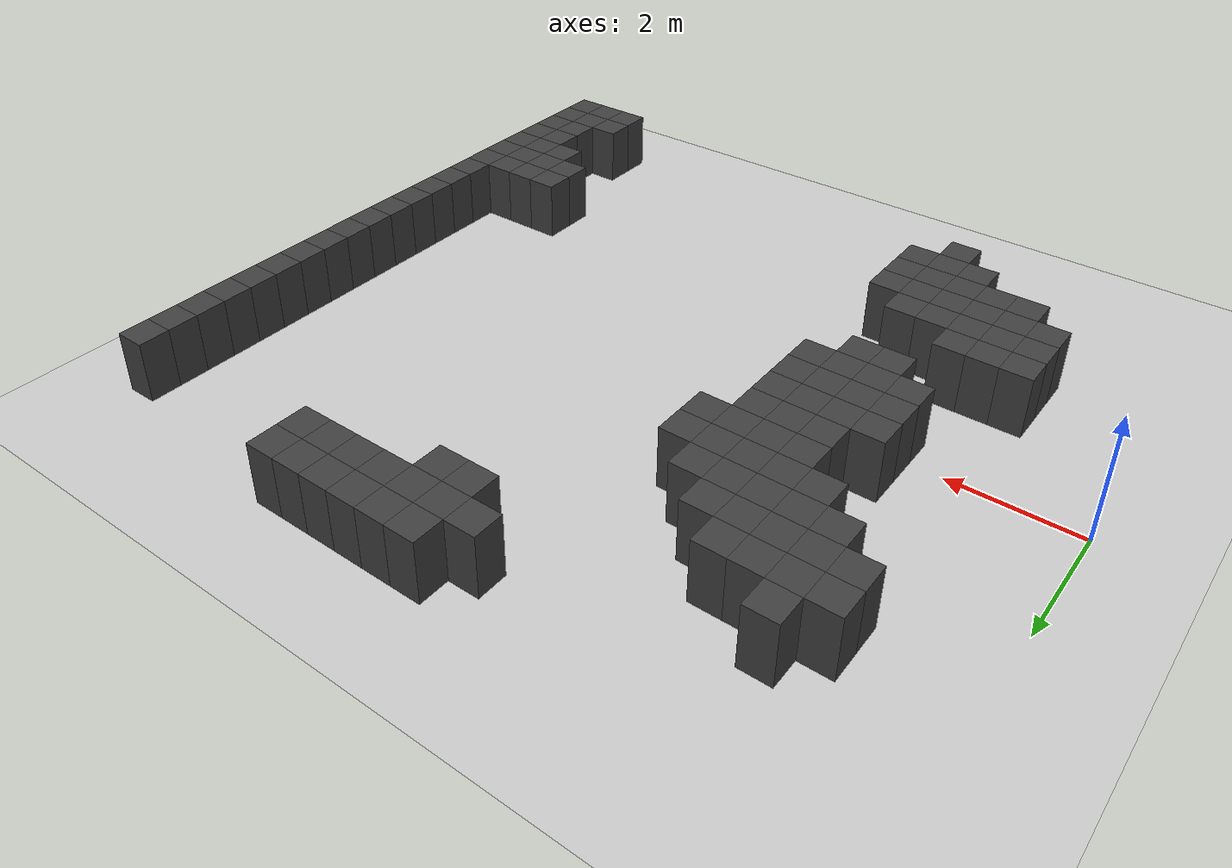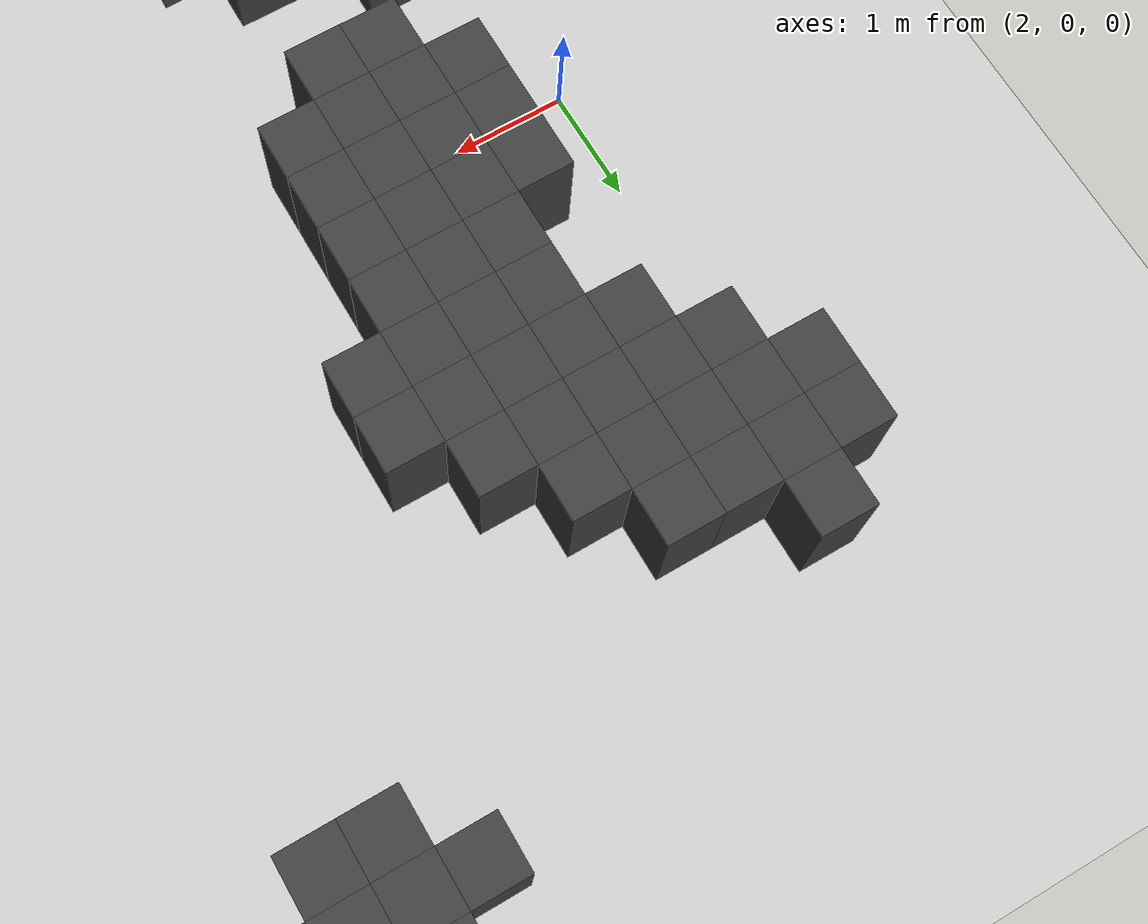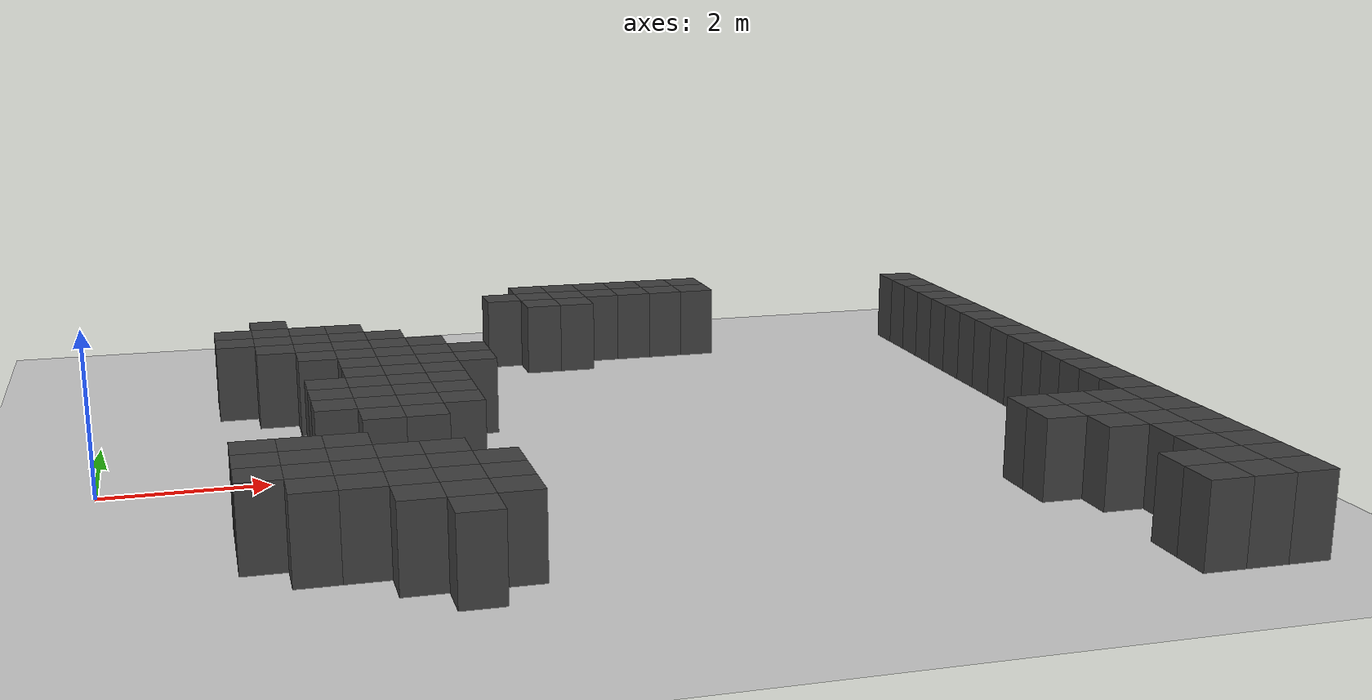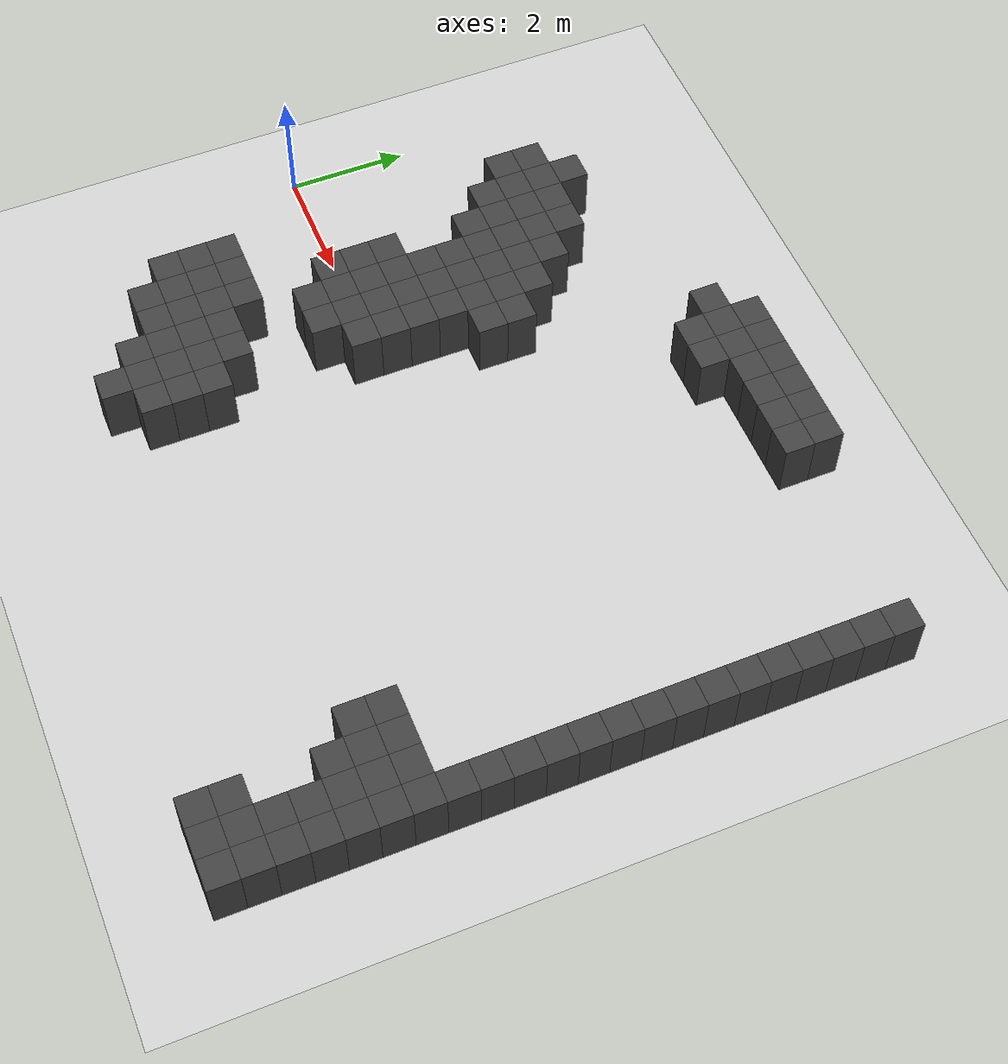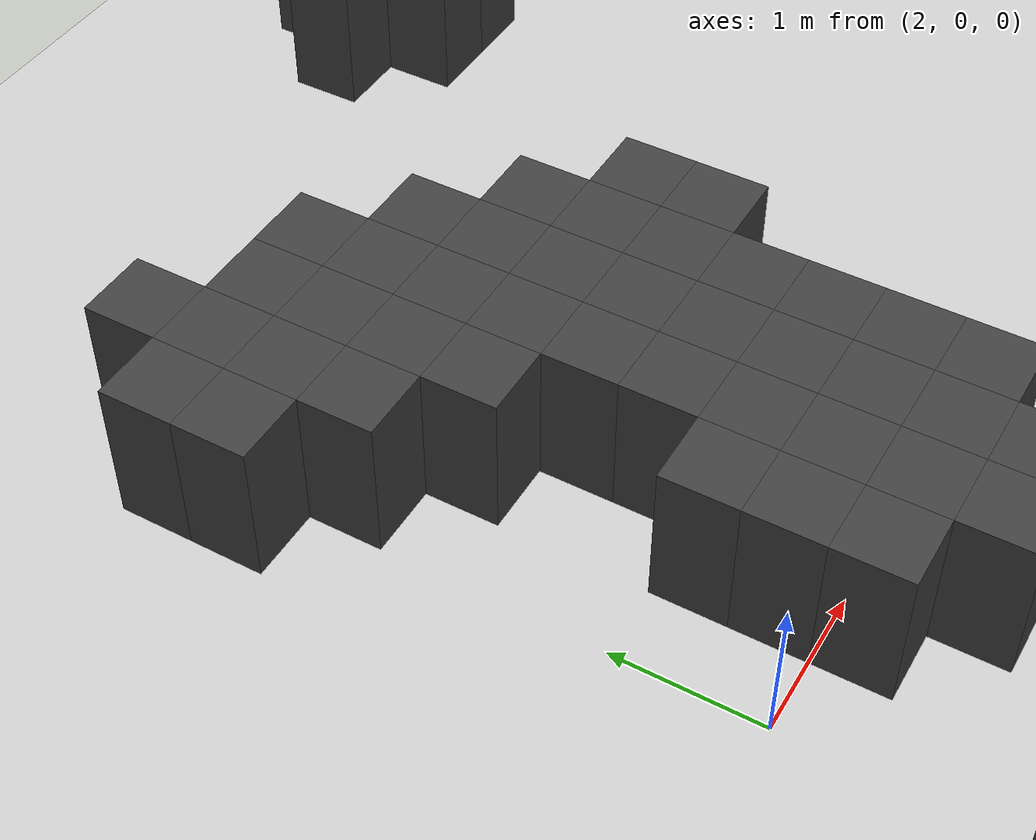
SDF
<sdf version="1.7">
 <world name="map_8829">
  <model name="ground_plane">
   <static>true</static>
   <link name="link">
    <collision name="collision">
     <geometry><plane><normal>0 0 1</normal><size>200 200</size></plane></geometry>
    </collision>
    <visual name="visual">
     <geometry><plane><normal>0 0 1</normal><size>200 200</size></plane></geometry>
     <material><ambient>0.8 0.8 0.8 1</ambient><diffuse>0.8 0.8 0.8 1</diffuse></material>
    </visual>
   </link>
  </model>
  <model name="maze_environment">
   <static>true</static>
   <link name="wall_229">
    <pose>6.250 5.750 0.500 0 0 0</pose>
    <collision name="col"><geometry><box><size>0.5 0.5 1.0</size></box></geometry></collision>
    <visual name="vis">
     <geometry><box><size>0.5 0.5 1.0</size></box></geometry>
     <material><ambient>0.15 0.15 0.15 1</ambient><diffuse>0.25 0.25 0.25 1</diffuse></material>
    </visual>
   </link>
   <link name="wall_230">
    <pose>6.750 5.750 0.500 0 0 0</pose>
    <collision name="col"><geometry><box><size>0.5 0.5 1.0</size></box></geometry></collision>
    <visual name="vis">
     <geometry><box><size>0.5 0.5 1.0</size></box></geometry>
     <material><ambient>0.15 0.15 0.15 1</ambient><diffuse>0.25 0.25 0.25 1</diffuse></material>
    </visual>
   </link>
   <link name="wall_231">
    <pose>7.250 5.750 0.500 0 0 0</pose>
    <collision name="col"><geometry><box><size>0.5 0.5 1.0</size></box></geometry></collision>
    <visual name="vis">
     <geometry><box><size>0.5 0.5 1.0</size></box></geometry>
     <material><ambient>0.15 0.15 0.15 1</ambient><diffuse>0.25 0.25 0.25 1</diffuse></material>
    </visual>
   </link>
   <link name="wall_232">
    <pose>7.750 5.750 0.500 0 0 0</pose>
    <collision name="col"><geometry><box><size>0.5 0.5 1.0</size></box></geometry></collision>
    <visual name="vis">
     <geometry><box><size>0.5 0.5 1.0</size></box></geometry>
     <material><ambient>0.15 0.15 0.15 1</ambient><diffuse>0.25 0.25 0.25 1</diffuse></material>
    </visual>
   </link>
   <link name="wall_233">
    <pose>8.250 5.750 0.500 0 0 0</pose>
    <collision name="col"><geometry><box><size>0.5 0.5 1.0</size></box></geometry></collision>
    <visual name="vis">
     <geometry><box><size>0.5 0.5 1.0</size></box></geometry>
     <material><ambient>0.15 0.15 0.15 1</ambient><diffuse>0.25 0.25 0.25 1</diffuse></material>
    </visual>
   </link>
   <link name="wall_234">
    <pose>8.750 5.750 0.500 0 0 0</pose>
    <collision name="col"><geometry><box><size>0.5 0.5 1.0</size></box></geometry></collision>
    <visual name="vis">
     <geometry><box><size>0.5 0.5 1.0</size></box></geometry>
     <material><ambient>0.15 0.15 0.15 1</ambient><diffuse>0.25 0.25 0.25 1</diffuse></material>
    </visual>
   </link>
   <link name="wall_242">
    <pose>5.750 5.250 0.500 0 0 0</pose>
    <collision name="col"><geometry><box><size>0.5 0.5 1.0</size></box></geometry></collision>
    <visual name="vis">
     <geometry><box><size>0.5 0.5 1.0</size></box></geometry>
     <material><ambient>0.15 0.15 0.15 1</ambient><diffuse>0.25 0.25 0.25 1</diffuse></material>
    </visual>
   </link>
   <link name="wall_243">
    <pose>6.250 5.250 0.500 0 0 0</pose>
    <collision name="col"><geometry><box><size>0.5 0.5 1.0</size></box></geometry></collision>
    <visual name="vis">
     <geometry><box><size>0.5 0.5 1.0</size></box></geometry>
     <material><ambient>0.15 0.15 0.15 1</ambient><diffuse>0.25 0.25 0.25 1</diffuse></material>
    </visual>
   </link>
   <link name="wall_244">
    <pose>6.750 5.250 0.500 0 0 0</pose>
    <collision name="col"><geometry><box><size>0.5 0.5 1.0</size></box></geometry></collision>
    <visual name="vis">
     <geometry><box><size>0.5 0.5 1.0</size></box></geometry>
     <material><ambient>0.15 0.15 0.15 1</ambient><diffuse>0.25 0.25 0.25 1</diffuse></material>
    </visual>
   </link>
   <link name="wall_245">
    <pose>7.250 5.250 0.500 0 0 0</pose>
    <collision name="col"><geometry><box><size>0.5 0.5 1.0</size></box></geometry></collision>
    <visual name="vis">
     <geometry><box><size>0.5 0.5 1.0</size></box></geometry>
     <material><ambient>0.15 0.15 0.15 1</ambient><diffuse>0.25 0.25 0.25 1</diffuse></material>
    </visual>
   </link>
   <link name="wall_246">
    <pose>7.750 5.250 0.500 0 0 0</pose>
    <collision name="col"><geometry><box><size>0.5 0.5 1.0</size></box></geometry></collision>
    <visual name="vis">
     <geometry><box><size>0.5 0.5 1.0</size></box></geometry>
     <material><ambient>0.15 0.15 0.15 1</ambient><diffuse>0.25 0.25 0.25 1</diffuse></material>
    </visual>
   </link>
   <link name="wall_247">
    <pose>8.250 5.250 0.500 0 0 0</pose>
    <collision name="col"><geometry><box><size>0.5 0.5 1.0</size></box></geometry></collision>
    <visual name="vis">
     <geometry><box><size>0.5 0.5 1.0</size></box></geometry>
     <material><ambient>0.15 0.15 0.15 1</ambient><diffuse>0.25 0.25 0.25 1</diffuse></material>
    </visual>
   </link>
   <link name="wall_248">
    <pose>8.750 5.250 0.500 0 0 0</pose>
    <collision name="col"><geometry><box><size>0.5 0.5 1.0</size></box></geometry></collision>
    <visual name="vis">
     <geometry><box><size>0.5 0.5 1.0</size></box></geometry>
     <material><ambient>0.15 0.15 0.15 1</ambient><diffuse>0.25 0.25 0.25 1</diffuse></material>
    </visual>
   </link>
   <link name="wall_249">
    <pose>12.250 5.250 0.500 0 0 0</pose>
    <collision name="col"><geometry><box><size>0.5 0.5 1.0</size></box></geometry></collision>
    <visual name="vis">
     <geometry><box><size>0.5 0.5 1.0</size></box></geometry>
     <material><ambient>0.15 0.15 0.15 1</ambient><diffuse>0.25 0.25 0.25 1</diffuse></material>
    </visual>
   </link>
   <link name="wall_256">
    <pose>6.250 4.750 0.500 0 0 0</pose>
    <collision name="col"><geometry><box><size>0.5 0.5 1.0</size></box></geometry></collision>
    <visual name="vis">
     <geometry><box><size>0.5 0.5 1.0</size></box></geometry>
     <material><ambient>0.15 0.15 0.15 1</ambient><diffuse>0.25 0.25 0.25 1</diffuse></material>
    </visual>
   </link>
   <link name="wall_257">
    <pose>6.750 4.750 0.500 0 0 0</pose>
    <collision name="col"><geometry><box><size>0.5 0.5 1.0</size></box></geometry></collision>
    <visual name="vis">
     <geometry><box><size>0.5 0.5 1.0</size></box></geometry>
     <material><ambient>0.15 0.15 0.15 1</ambient><diffuse>0.25 0.25 0.25 1</diffuse></material>
    </visual>
   </link>
   <link name="wall_258">
    <pose>12.250 4.750 0.500 0 0 0</pose>
    <collision name="col"><geometry><box><size>0.5 0.5 1.0</size></box></geometry></collision>
    <visual name="vis">
     <geometry><box><size>0.5 0.5 1.0</size></box></geometry>
     <material><ambient>0.15 0.15 0.15 1</ambient><diffuse>0.25 0.25 0.25 1</diffuse></material>
    </visual>
   </link>
   <link name="wall_266">
    <pose>2.250 4.250 0.500 0 0 0</pose>
    <collision name="col"><geometry><box><size>0.5 0.5 1.0</size></box></geometry></collision>
    <visual name="vis">
     <geometry><box><size>0.5 0.5 1.0</size></box></geometry>
     <material><ambient>0.15 0.15 0.15 1</ambient><diffuse>0.25 0.25 0.25 1</diffuse></material>
    </visual>
   </link>
   <link name="wall_267">
    <pose>12.250 4.250 0.500 0 0 0</pose>
    <collision name="col"><geometry><box><size>0.5 0.5 1.0</size></box></geometry></collision>
    <visual name="vis">
     <geometry><box><size>0.5 0.5 1.0</size></box></geometry>
     <material><ambient>0.15 0.15 0.15 1</ambient><diffuse>0.25 0.25 0.25 1</diffuse></material>
    </visual>
   </link>
   <link name="wall_274">
    <pose>1.750 3.750 0.500 0 0 0</pose>
    <collision name="col"><geometry><box><size>0.5 0.5 1.0</size></box></geometry></collision>
    <visual name="vis">
     <geometry><box><size>0.5 0.5 1.0</size></box></geometry>
     <material><ambient>0.15 0.15 0.15 1</ambient><diffuse>0.25 0.25 0.25 1</diffuse></material>
    </visual>
   </link>
   <link name="wall_275">
    <pose>2.250 3.750 0.500 0 0 0</pose>
    <collision name="col"><geometry><box><size>0.5 0.5 1.0</size></box></geometry></collision>
    <visual name="vis">
     <geometry><box><size>0.5 0.5 1.0</size></box></geometry>
     <material><ambient>0.15 0.15 0.15 1</ambient><diffuse>0.25 0.25 0.25 1</diffuse></material>
    </visual>
   </link>
   <link name="wall_276">
    <pose>2.750 3.750 0.500 0 0 0</pose>
    <collision name="col"><geometry><box><size>0.5 0.5 1.0</size></box></geometry></collision>
    <visual name="vis">
     <geometry><box><size>0.5 0.5 1.0</size></box></geometry>
     <material><ambient>0.15 0.15 0.15 1</ambient><diffuse>0.25 0.25 0.25 1</diffuse></material>
    </visual>
   </link>
   <link name="wall_277">
    <pose>3.250 3.750 0.500 0 0 0</pose>
    <collision name="col"><geometry><box><size>0.5 0.5 1.0</size></box></geometry></collision>
    <visual name="vis">
     <geometry><box><size>0.5 0.5 1.0</size></box></geometry>
     <material><ambient>0.15 0.15 0.15 1</ambient><diffuse>0.25 0.25 0.25 1</diffuse></material>
    </visual>
   </link>
   <link name="wall_278">
    <pose>12.250 3.750 0.500 0 0 0</pose>
    <collision name="col"><geometry><box><size>0.5 0.5 1.0</size></box></geometry></collision>
    <visual name="vis">
     <geometry><box><size>0.5 0.5 1.0</size></box></geometry>
     <material><ambient>0.15 0.15 0.15 1</ambient><diffuse>0.25 0.25 0.25 1</diffuse></material>
    </visual>
   </link>
   <link name="wall_283">
    <pose>1.750 3.250 0.500 0 0 0</pose>
    <collision name="col"><geometry><box><size>0.5 0.5 1.0</size></box></geometry></collision>
    <visual name="vis">
     <geometry><box><size>0.5 0.5 1.0</size></box></geometry>
     <material><ambient>0.15 0.15 0.15 1</ambient><diffuse>0.25 0.25 0.25 1</diffuse></material>
    </visual>
   </link>
   <link name="wall_284">
    <pose>2.250 3.250 0.500 0 0 0</pose>
    <collision name="col"><geometry><box><size>0.5 0.5 1.0</size></box></geometry></collision>
    <visual name="vis">
     <geometry><box><size>0.5 0.5 1.0</size></box></geometry>
     <material><ambient>0.15 0.15 0.15 1</ambient><diffuse>0.25 0.25 0.25 1</diffuse></material>
    </visual>
   </link>
   <link name="wall_285">
    <pose>2.750 3.250 0.500 0 0 0</pose>
    <collision name="col"><geometry><box><size>0.5 0.5 1.0</size></box></geometry></collision>
    <visual name="vis">
     <geometry><box><size>0.5 0.5 1.0</size></box></geometry>
     <material><ambient>0.15 0.15 0.15 1</ambient><diffuse>0.25 0.25 0.25 1</diffuse></material>
    </visual>
   </link>
   <link name="wall_286">
    <pose>3.250 3.250 0.500 0 0 0</pose>
    <collision name="col"><geometry><box><size>0.5 0.5 1.0</size></box></geometry></collision>
    <visual name="vis">
     <geometry><box><size>0.5 0.5 1.0</size></box></geometry>
     <material><ambient>0.15 0.15 0.15 1</ambient><diffuse>0.25 0.25 0.25 1</diffuse></material>
    </visual>
   </link>
   <link name="wall_287">
    <pose>3.750 3.250 0.500 0 0 0</pose>
    <collision name="col"><geometry><box><size>0.5 0.5 1.0</size></box></geometry></collision>
    <visual name="vis">
     <geometry><box><size>0.5 0.5 1.0</size></box></geometry>
     <material><ambient>0.15 0.15 0.15 1</ambient><diffuse>0.25 0.25 0.25 1</diffuse></material>
    </visual>
   </link>
   <link name="wall_288">
    <pose>12.250 3.250 0.500 0 0 0</pose>
    <collision name="col"><geometry><box><size>0.5 0.5 1.0</size></box></geometry></collision>
    <visual name="vis">
     <geometry><box><size>0.5 0.5 1.0</size></box></geometry>
     <material><ambient>0.15 0.15 0.15 1</ambient><diffuse>0.25 0.25 0.25 1</diffuse></material>
    </visual>
   </link>
   <link name="wall_293">
    <pose>2.250 2.750 0.500 0 0 0</pose>
    <collision name="col"><geometry><box><size>0.5 0.5 1.0</size></box></geometry></collision>
    <visual name="vis">
     <geometry><box><size>0.5 0.5 1.0</size></box></geometry>
     <material><ambient>0.15 0.15 0.15 1</ambient><diffuse>0.25 0.25 0.25 1</diffuse></material>
    </visual>
   </link>
   <link name="wall_294">
    <pose>2.750 2.750 0.500 0 0 0</pose>
    <collision name="col"><geometry><box><size>0.5 0.5 1.0</size></box></geometry></collision>
    <visual name="vis">
     <geometry><box><size>0.5 0.5 1.0</size></box></geometry>
     <material><ambient>0.15 0.15 0.15 1</ambient><diffuse>0.25 0.25 0.25 1</diffuse></material>
    </visual>
   </link>
   <link name="wall_295">
    <pose>3.250 2.750 0.500 0 0 0</pose>
    <collision name="col"><geometry><box><size>0.5 0.5 1.0</size></box></geometry></collision>
    <visual name="vis">
     <geometry><box><size>0.5 0.5 1.0</size></box></geometry>
     <material><ambient>0.15 0.15 0.15 1</ambient><diffuse>0.25 0.25 0.25 1</diffuse></material>
    </visual>
   </link>
   <link name="wall_296">
    <pose>3.750 2.750 0.500 0 0 0</pose>
    <collision name="col"><geometry><box><size>0.5 0.5 1.0</size></box></geometry></collision>
    <visual name="vis">
     <geometry><box><size>0.5 0.5 1.0</size></box></geometry>
     <material><ambient>0.15 0.15 0.15 1</ambient><diffuse>0.25 0.25 0.25 1</diffuse></material>
    </visual>
   </link>
   <link name="wall_297">
    <pose>4.250 2.750 0.500 0 0 0</pose>
    <collision name="col"><geometry><box><size>0.5 0.5 1.0</size></box></geometry></collision>
    <visual name="vis">
     <geometry><box><size>0.5 0.5 1.0</size></box></geometry>
     <material><ambient>0.15 0.15 0.15 1</ambient><diffuse>0.25 0.25 0.25 1</diffuse></material>
    </visual>
   </link>
   <link name="wall_298">
    <pose>12.250 2.750 0.500 0 0 0</pose>
    <collision name="col"><geometry><box><size>0.5 0.5 1.0</size></box></geometry></collision>
    <visual name="vis">
     <geometry><box><size>0.5 0.5 1.0</size></box></geometry>
     <material><ambient>0.15 0.15 0.15 1</ambient><diffuse>0.25 0.25 0.25 1</diffuse></material>
    </visual>
   </link>
   <link name="wall_302">
    <pose>2.750 2.250 0.500 0 0 0</pose>
    <collision name="col"><geometry><box><size>0.5 0.5 1.0</size></box></geometry></collision>
    <visual name="vis">
     <geometry><box><size>0.5 0.5 1.0</size></box></geometry>
     <material><ambient>0.15 0.15 0.15 1</ambient><diffuse>0.25 0.25 0.25 1</diffuse></material>
    </visual>
   </link>
   <link name="wall_303">
    <pose>3.250 2.250 0.500 0 0 0</pose>
    <collision name="col"><geometry><box><size>0.5 0.5 1.0</size></box></geometry></collision>
    <visual name="vis">
     <geometry><box><size>0.5 0.5 1.0</size></box></geometry>
     <material><ambient>0.15 0.15 0.15 1</ambient><diffuse>0.25 0.25 0.25 1</diffuse></material>
    </visual>
   </link>
   <link name="wall_304">
    <pose>3.750 2.250 0.500 0 0 0</pose>
    <collision name="col"><geometry><box><size>0.5 0.5 1.0</size></box></geometry></collision>
    <visual name="vis">
     <geometry><box><size>0.5 0.5 1.0</size></box></geometry>
     <material><ambient>0.15 0.15 0.15 1</ambient><diffuse>0.25 0.25 0.25 1</diffuse></material>
    </visual>
   </link>
   <link name="wall_305">
    <pose>4.250 2.250 0.500 0 0 0</pose>
    <collision name="col"><geometry><box><size>0.5 0.5 1.0</size></box></geometry></collision>
    <visual name="vis">
     <geometry><box><size>0.5 0.5 1.0</size></box></geometry>
     <material><ambient>0.15 0.15 0.15 1</ambient><diffuse>0.25 0.25 0.25 1</diffuse></material>
    </visual>
   </link>
   <link name="wall_306">
    <pose>4.750 2.250 0.500 0 0 0</pose>
    <collision name="col"><geometry><box><size>0.5 0.5 1.0</size></box></geometry></collision>
    <visual name="vis">
     <geometry><box><size>0.5 0.5 1.0</size></box></geometry>
     <material><ambient>0.15 0.15 0.15 1</ambient><diffuse>0.25 0.25 0.25 1</diffuse></material>
    </visual>
   </link>
   <link name="wall_307">
    <pose>12.250 2.250 0.500 0 0 0</pose>
    <collision name="col"><geometry><box><size>0.5 0.5 1.0</size></box></geometry></collision>
    <visual name="vis">
     <geometry><box><size>0.5 0.5 1.0</size></box></geometry>
     <material><ambient>0.15 0.15 0.15 1</ambient><diffuse>0.25 0.25 0.25 1</diffuse></material>
    </visual>
   </link>
   <link name="wall_312">
    <pose>3.250 1.750 0.500 0 0 0</pose>
    <collision name="col"><geometry><box><size>0.5 0.5 1.0</size></box></geometry></collision>
    <visual name="vis">
     <geometry><box><size>0.5 0.5 1.0</size></box></geometry>
     <material><ambient>0.15 0.15 0.15 1</ambient><diffuse>0.25 0.25 0.25 1</diffuse></material>
    </visual>
   </link>
   <link name="wall_313">
    <pose>3.750 1.750 0.500 0 0 0</pose>
    <collision name="col"><geometry><box><size>0.5 0.5 1.0</size></box></geometry></collision>
    <visual name="vis">
     <geometry><box><size>0.5 0.5 1.0</size></box></geometry>
     <material><ambient>0.15 0.15 0.15 1</ambient><diffuse>0.25 0.25 0.25 1</diffuse></material>
    </visual>
   </link>
   <link name="wall_314">
    <pose>4.250 1.750 0.500 0 0 0</pose>
    <collision name="col"><geometry><box><size>0.5 0.5 1.0</size></box></geometry></collision>
    <visual name="vis">
     <geometry><box><size>0.5 0.5 1.0</size></box></geometry>
     <material><ambient>0.15 0.15 0.15 1</ambient><diffuse>0.25 0.25 0.25 1</diffuse></material>
    </visual>
   </link>
   <link name="wall_315">
    <pose>4.750 1.750 0.500 0 0 0</pose>
    <collision name="col"><geometry><box><size>0.5 0.5 1.0</size></box></geometry></collision>
    <visual name="vis">
     <geometry><box><size>0.5 0.5 1.0</size></box></geometry>
     <material><ambient>0.15 0.15 0.15 1</ambient><diffuse>0.25 0.25 0.25 1</diffuse></material>
    </visual>
   </link>
   <link name="wall_316">
    <pose>12.250 1.750 0.500 0 0 0</pose>
    <collision name="col"><geometry><box><size>0.5 0.5 1.0</size></box></geometry></collision>
    <visual name="vis">
     <geometry><box><size>0.5 0.5 1.0</size></box></geometry>
     <material><ambient>0.15 0.15 0.15 1</ambient><diffuse>0.25 0.25 0.25 1</diffuse></material>
    </visual>
   </link>
   <link name="wall_322">
    <pose>3.250 1.250 0.500 0 0 0</pose>
    <collision name="col"><geometry><box><size>0.5 0.5 1.0</size></box></geometry></collision>
    <visual name="vis">
     <geometry><box><size>0.5 0.5 1.0</size></box></geometry>
     <material><ambient>0.15 0.15 0.15 1</ambient><diffuse>0.25 0.25 0.25 1</diffuse></material>
    </visual>
   </link>
   <link name="wall_323">
    <pose>3.750 1.250 0.500 0 0 0</pose>
    <collision name="col"><geometry><box><size>0.5 0.5 1.0</size></box></geometry></collision>
    <visual name="vis">
     <geometry><box><size>0.5 0.5 1.0</size></box></geometry>
     <material><ambient>0.15 0.15 0.15 1</ambient><diffuse>0.25 0.25 0.25 1</diffuse></material>
    </visual>
   </link>
   <link name="wall_324">
    <pose>4.250 1.250 0.500 0 0 0</pose>
    <collision name="col"><geometry><box><size>0.5 0.5 1.0</size></box></geometry></collision>
    <visual name="vis">
     <geometry><box><size>0.5 0.5 1.0</size></box></geometry>
     <material><ambient>0.15 0.15 0.15 1</ambient><diffuse>0.25 0.25 0.25 1</diffuse></material>
    </visual>
   </link>
   <link name="wall_325">
    <pose>12.250 1.250 0.500 0 0 0</pose>
    <collision name="col"><geometry><box><size>0.5 0.5 1.0</size></box></geometry></collision>
    <visual name="vis">
     <geometry><box><size>0.5 0.5 1.0</size></box></geometry>
     <material><ambient>0.15 0.15 0.15 1</ambient><diffuse>0.25 0.25 0.25 1</diffuse></material>
    </visual>
   </link>
   <link name="wall_331">
    <pose>2.750 0.750 0.500 0 0 0</pose>
    <collision name="col"><geometry><box><size>0.5 0.5 1.0</size></box></geometry></collision>
    <visual name="vis">
     <geometry><box><size>0.5 0.5 1.0</size></box></geometry>
     <material><ambient>0.15 0.15 0.15 1</ambient><diffuse>0.25 0.25 0.25 1</diffuse></material>
    </visual>
   </link>
   <link name="wall_332">
    <pose>3.250 0.750 0.500 0 0 0</pose>
    <collision name="col"><geometry><box><size>0.5 0.5 1.0</size></box></geometry></collision>
    <visual name="vis">
     <geometry><box><size>0.5 0.5 1.0</size></box></geometry>
     <material><ambient>0.15 0.15 0.15 1</ambient><diffuse>0.25 0.25 0.25 1</diffuse></material>
    </visual>
   </link>
   <link name="wall_333">
    <pose>3.750 0.750 0.500 0 0 0</pose>
    <collision name="col"><geometry><box><size>0.5 0.5 1.0</size></box></geometry></collision>
    <visual name="vis">
     <geometry><box><size>0.5 0.5 1.0</size></box></geometry>
     <material><ambient>0.15 0.15 0.15 1</ambient><diffuse>0.25 0.25 0.25 1</diffuse></material>
    </visual>
   </link>
   <link name="wall_334">
    <pose>4.250 0.750 0.500 0 0 0</pose>
    <collision name="col"><geometry><box><size>0.5 0.5 1.0</size></box></geometry></collision>
    <visual name="vis">
     <geometry><box><size>0.5 0.5 1.0</size></box></geometry>
     <material><ambient>0.15 0.15 0.15 1</ambient><diffuse>0.25 0.25 0.25 1</diffuse></material>
    </visual>
   </link>
   <link name="wall_335">
    <pose>12.250 0.750 0.500 0 0 0</pose>
    <collision name="col"><geometry><box><size>0.5 0.5 1.0</size></box></geometry></collision>
    <visual name="vis">
     <geometry><box><size>0.5 0.5 1.0</size></box></geometry>
     <material><ambient>0.15 0.15 0.15 1</ambient><diffuse>0.25 0.25 0.25 1</diffuse></material>
    </visual>
   </link>
   <link name="wall_341">
    <pose>2.750 0.250 0.500 0 0 0</pose>
    <collision name="col"><geometry><box><size>0.5 0.5 1.0</size></box></geometry></collision>
    <visual name="vis">
     <geometry><box><size>0.5 0.5 1.0</size></box></geometry>
     <material><ambient>0.15 0.15 0.15 1</ambient><diffuse>0.25 0.25 0.25 1</diffuse></material>
    </visual>
   </link>
   <link name="wall_342">
    <pose>3.250 0.250 0.500 0 0 0</pose>
    <collision name="col"><geometry><box><size>0.5 0.5 1.0</size></box></geometry></collision>
    <visual name="vis">
     <geometry><box><size>0.5 0.5 1.0</size></box></geometry>
     <material><ambient>0.15 0.15 0.15 1</ambient><diffuse>0.25 0.25 0.25 1</diffuse></material>
    </visual>
   </link>
   <link name="wall_343">
    <pose>3.750 0.250 0.500 0 0 0</pose>
    <collision name="col"><geometry><box><size>0.5 0.5 1.0</size></box></geometry></collision>
    <visual name="vis">
     <geometry><box><size>0.5 0.5 1.0</size></box></geometry>
     <material><ambient>0.15 0.15 0.15 1</ambient><diffuse>0.25 0.25 0.25 1</diffuse></material>
    </visual>
   </link>
   <link name="wall_344">
    <pose>4.250 0.250 0.500 0 0 0</pose>
    <collision name="col"><geometry><box><size>0.5 0.5 1.0</size></box></geometry></collision>
    <visual name="vis">
     <geometry><box><size>0.5 0.5 1.0</size></box></geometry>
     <material><ambient>0.15 0.15 0.15 1</ambient><diffuse>0.25 0.25 0.25 1</diffuse></material>
    </visual>
   </link>
   <link name="wall_345">
    <pose>12.250 0.250 0.500 0 0 0</pose>
    <collision name="col"><geometry><box><size>0.5 0.5 1.0</size></box></geometry></collision>
    <visual name="vis">
     <geometry><box><size>0.5 0.5 1.0</size></box></geometry>
     <material><ambient>0.15 0.15 0.15 1</ambient><diffuse>0.25 0.25 0.25 1</diffuse></material>
    </visual>
   </link>
   <link name="wall_354">
    <pose>2.750 -0.250 0.500 0 0 0</pose>
    <collision name="col"><geometry><box><size>0.5 0.5 1.0</size></box></geometry></collision>
    <visual name="vis">
     <geometry><box><size>0.5 0.5 1.0</size></box></geometry>
     <material><ambient>0.15 0.15 0.15 1</ambient><diffuse>0.25 0.25 0.25 1</diffuse></material>
    </visual>
   </link>
   <link name="wall_355">
    <pose>3.250 -0.250 0.500 0 0 0</pose>
    <collision name="col"><geometry><box><size>0.5 0.5 1.0</size></box></geometry></collision>
    <visual name="vis">
     <geometry><box><size>0.5 0.5 1.0</size></box></geometry>
     <material><ambient>0.15 0.15 0.15 1</ambient><diffuse>0.25 0.25 0.25 1</diffuse></material>
    </visual>
   </link>
   <link name="wall_356">
    <pose>3.750 -0.250 0.500 0 0 0</pose>
    <collision name="col"><geometry><box><size>0.5 0.5 1.0</size></box></geometry></collision>
    <visual name="vis">
     <geometry><box><size>0.5 0.5 1.0</size></box></geometry>
     <material><ambient>0.15 0.15 0.15 1</ambient><diffuse>0.25 0.25 0.25 1</diffuse></material>
    </visual>
   </link>
   <link name="wall_357">
    <pose>4.250 -0.250 0.500 0 0 0</pose>
    <collision name="col"><geometry><box><size>0.5 0.5 1.0</size></box></geometry></collision>
    <visual name="vis">
     <geometry><box><size>0.5 0.5 1.0</size></box></geometry>
     <material><ambient>0.15 0.15 0.15 1</ambient><diffuse>0.25 0.25 0.25 1</diffuse></material>
    </visual>
   </link>
   <link name="wall_358">
    <pose>12.250 -0.250 0.500 0 0 0</pose>
    <collision name="col"><geometry><box><size>0.5 0.5 1.0</size></box></geometry></collision>
    <visual name="vis">
     <geometry><box><size>0.5 0.5 1.0</size></box></geometry>
     <material><ambient>0.15 0.15 0.15 1</ambient><diffuse>0.25 0.25 0.25 1</diffuse></material>
    </visual>
   </link>
   <link name="wall_367">
    <pose>3.250 -0.750 0.500 0 0 0</pose>
    <collision name="col"><geometry><box><size>0.5 0.5 1.0</size></box></geometry></collision>
    <visual name="vis">
     <geometry><box><size>0.5 0.5 1.0</size></box></geometry>
     <material><ambient>0.15 0.15 0.15 1</ambient><diffuse>0.25 0.25 0.25 1</diffuse></material>
    </visual>
   </link>
   <link name="wall_368">
    <pose>3.750 -0.750 0.500 0 0 0</pose>
    <collision name="col"><geometry><box><size>0.5 0.5 1.0</size></box></geometry></collision>
    <visual name="vis">
     <geometry><box><size>0.5 0.5 1.0</size></box></geometry>
     <material><ambient>0.15 0.15 0.15 1</ambient><diffuse>0.25 0.25 0.25 1</diffuse></material>
    </visual>
   </link>
   <link name="wall_369">
    <pose>12.250 -0.750 0.500 0 0 0</pose>
    <collision name="col"><geometry><box><size>0.5 0.5 1.0</size></box></geometry></collision>
    <visual name="vis">
     <geometry><box><size>0.5 0.5 1.0</size></box></geometry>
     <material><ambient>0.15 0.15 0.15 1</ambient><diffuse>0.25 0.25 0.25 1</diffuse></material>
    </visual>
   </link>
   <link name="wall_378">
    <pose>12.250 -1.250 0.500 0 0 0</pose>
    <collision name="col"><geometry><box><size>0.5 0.5 1.0</size></box></geometry></collision>
    <visual name="vis">
     <geometry><box><size>0.5 0.5 1.0</size></box></geometry>
     <material><ambient>0.15 0.15 0.15 1</ambient><diffuse>0.25 0.25 0.25 1</diffuse></material>
    </visual>
   </link>
   <link name="wall_387">
    <pose>1.750 -1.750 0.500 0 0 0</pose>
    <collision name="col"><geometry><box><size>0.5 0.5 1.0</size></box></geometry></collision>
    <visual name="vis">
     <geometry><box><size>0.5 0.5 1.0</size></box></geometry>
     <material><ambient>0.15 0.15 0.15 1</ambient><diffuse>0.25 0.25 0.25 1</diffuse></material>
    </visual>
   </link>
   <link name="wall_388">
    <pose>2.250 -1.750 0.500 0 0 0</pose>
    <collision name="col"><geometry><box><size>0.5 0.5 1.0</size></box></geometry></collision>
    <visual name="vis">
     <geometry><box><size>0.5 0.5 1.0</size></box></geometry>
     <material><ambient>0.15 0.15 0.15 1</ambient><diffuse>0.25 0.25 0.25 1</diffuse></material>
    </visual>
   </link>
   <link name="wall_389">
    <pose>2.750 -1.750 0.500 0 0 0</pose>
    <collision name="col"><geometry><box><size>0.5 0.5 1.0</size></box></geometry></collision>
    <visual name="vis">
     <geometry><box><size>0.5 0.5 1.0</size></box></geometry>
     <material><ambient>0.15 0.15 0.15 1</ambient><diffuse>0.25 0.25 0.25 1</diffuse></material>
    </visual>
   </link>
   <link name="wall_390">
    <pose>12.250 -1.750 0.500 0 0 0</pose>
    <collision name="col"><geometry><box><size>0.5 0.5 1.0</size></box></geometry></collision>
    <visual name="vis">
     <geometry><box><size>0.5 0.5 1.0</size></box></geometry>
     <material><ambient>0.15 0.15 0.15 1</ambient><diffuse>0.25 0.25 0.25 1</diffuse></material>
    </visual>
   </link>
   <link name="wall_402">
    <pose>1.750 -2.250 0.500 0 0 0</pose>
    <collision name="col"><geometry><box><size>0.5 0.5 1.0</size></box></geometry></collision>
    <visual name="vis">
     <geometry><box><size>0.5 0.5 1.0</size></box></geometry>
     <material><ambient>0.15 0.15 0.15 1</ambient><diffuse>0.25 0.25 0.25 1</diffuse></material>
    </visual>
   </link>
   <link name="wall_403">
    <pose>2.250 -2.250 0.500 0 0 0</pose>
    <collision name="col"><geometry><box><size>0.5 0.5 1.0</size></box></geometry></collision>
    <visual name="vis">
     <geometry><box><size>0.5 0.5 1.0</size></box></geometry>
     <material><ambient>0.15 0.15 0.15 1</ambient><diffuse>0.25 0.25 0.25 1</diffuse></material>
    </visual>
   </link>
   <link name="wall_404">
    <pose>2.750 -2.250 0.500 0 0 0</pose>
    <collision name="col"><geometry><box><size>0.5 0.5 1.0</size></box></geometry></collision>
    <visual name="vis">
     <geometry><box><size>0.5 0.5 1.0</size></box></geometry>
     <material><ambient>0.15 0.15 0.15 1</ambient><diffuse>0.25 0.25 0.25 1</diffuse></material>
    </visual>
   </link>
   <link name="wall_405">
    <pose>3.250 -2.250 0.500 0 0 0</pose>
    <collision name="col"><geometry><box><size>0.5 0.5 1.0</size></box></geometry></collision>
    <visual name="vis">
     <geometry><box><size>0.5 0.5 1.0</size></box></geometry>
     <material><ambient>0.15 0.15 0.15 1</ambient><diffuse>0.25 0.25 0.25 1</diffuse></material>
    </visual>
   </link>
   <link name="wall_406">
    <pose>3.750 -2.250 0.500 0 0 0</pose>
    <collision name="col"><geometry><box><size>0.5 0.5 1.0</size></box></geometry></collision>
    <visual name="vis">
     <geometry><box><size>0.5 0.5 1.0</size></box></geometry>
     <material><ambient>0.15 0.15 0.15 1</ambient><diffuse>0.25 0.25 0.25 1</diffuse></material>
    </visual>
   </link>
   <link name="wall_407">
    <pose>10.750 -2.250 0.500 0 0 0</pose>
    <collision name="col"><geometry><box><size>0.5 0.5 1.0</size></box></geometry></collision>
    <visual name="vis">
     <geometry><box><size>0.5 0.5 1.0</size></box></geometry>
     <material><ambient>0.15 0.15 0.15 1</ambient><diffuse>0.25 0.25 0.25 1</diffuse></material>
    </visual>
   </link>
   <link name="wall_408">
    <pose>11.250 -2.250 0.500 0 0 0</pose>
    <collision name="col"><geometry><box><size>0.5 0.5 1.0</size></box></geometry></collision>
    <visual name="vis">
     <geometry><box><size>0.5 0.5 1.0</size></box></geometry>
     <material><ambient>0.15 0.15 0.15 1</ambient><diffuse>0.25 0.25 0.25 1</diffuse></material>
    </visual>
   </link>
   <link name="wall_409">
    <pose>11.750 -2.250 0.500 0 0 0</pose>
    <collision name="col"><geometry><box><size>0.5 0.5 1.0</size></box></geometry></collision>
    <visual name="vis">
     <geometry><box><size>0.5 0.5 1.0</size></box></geometry>
     <material><ambient>0.15 0.15 0.15 1</ambient><diffuse>0.25 0.25 0.25 1</diffuse></material>
    </visual>
   </link>
   <link name="wall_410">
    <pose>12.250 -2.250 0.500 0 0 0</pose>
    <collision name="col"><geometry><box><size>0.5 0.5 1.0</size></box></geometry></collision>
    <visual name="vis">
     <geometry><box><size>0.5 0.5 1.0</size></box></geometry>
     <material><ambient>0.15 0.15 0.15 1</ambient><diffuse>0.25 0.25 0.25 1</diffuse></material>
    </visual>
   </link>
   <link name="wall_424">
    <pose>1.750 -2.750 0.500 0 0 0</pose>
    <collision name="col"><geometry><box><size>0.5 0.5 1.0</size></box></geometry></collision>
    <visual name="vis">
     <geometry><box><size>0.5 0.5 1.0</size></box></geometry>
     <material><ambient>0.15 0.15 0.15 1</ambient><diffuse>0.25 0.25 0.25 1</diffuse></material>
    </visual>
   </link>
   <link name="wall_425">
    <pose>2.250 -2.750 0.500 0 0 0</pose>
    <collision name="col"><geometry><box><size>0.5 0.5 1.0</size></box></geometry></collision>
    <visual name="vis">
     <geometry><box><size>0.5 0.5 1.0</size></box></geometry>
     <material><ambient>0.15 0.15 0.15 1</ambient><diffuse>0.25 0.25 0.25 1</diffuse></material>
    </visual>
   </link>
   <link name="wall_426">
    <pose>2.750 -2.750 0.500 0 0 0</pose>
    <collision name="col"><geometry><box><size>0.5 0.5 1.0</size></box></geometry></collision>
    <visual name="vis">
     <geometry><box><size>0.5 0.5 1.0</size></box></geometry>
     <material><ambient>0.15 0.15 0.15 1</ambient><diffuse>0.25 0.25 0.25 1</diffuse></material>
    </visual>
   </link>
   <link name="wall_427">
    <pose>3.250 -2.750 0.500 0 0 0</pose>
    <collision name="col"><geometry><box><size>0.5 0.5 1.0</size></box></geometry></collision>
    <visual name="vis">
     <geometry><box><size>0.5 0.5 1.0</size></box></geometry>
     <material><ambient>0.15 0.15 0.15 1</ambient><diffuse>0.25 0.25 0.25 1</diffuse></material>
    </visual>
   </link>
   <link name="wall_428">
    <pose>3.750 -2.750 0.500 0 0 0</pose>
    <collision name="col"><geometry><box><size>0.5 0.5 1.0</size></box></geometry></collision>
    <visual name="vis">
     <geometry><box><size>0.5 0.5 1.0</size></box></geometry>
     <material><ambient>0.15 0.15 0.15 1</ambient><diffuse>0.25 0.25 0.25 1</diffuse></material>
    </visual>
   </link>
   <link name="wall_429">
    <pose>4.250 -2.750 0.500 0 0 0</pose>
    <collision name="col"><geometry><box><size>0.5 0.5 1.0</size></box></geometry></collision>
    <visual name="vis">
     <geometry><box><size>0.5 0.5 1.0</size></box></geometry>
     <material><ambient>0.15 0.15 0.15 1</ambient><diffuse>0.25 0.25 0.25 1</diffuse></material>
    </visual>
   </link>
   <link name="wall_430">
    <pose>10.750 -2.750 0.500 0 0 0</pose>
    <collision name="col"><geometry><box><size>0.5 0.5 1.0</size></box></geometry></collision>
    <visual name="vis">
     <geometry><box><size>0.5 0.5 1.0</size></box></geometry>
     <material><ambient>0.15 0.15 0.15 1</ambient><diffuse>0.25 0.25 0.25 1</diffuse></material>
    </visual>
   </link>
   <link name="wall_431">
    <pose>11.250 -2.750 0.500 0 0 0</pose>
    <collision name="col"><geometry><box><size>0.5 0.5 1.0</size></box></geometry></collision>
    <visual name="vis">
     <geometry><box><size>0.5 0.5 1.0</size></box></geometry>
     <material><ambient>0.15 0.15 0.15 1</ambient><diffuse>0.25 0.25 0.25 1</diffuse></material>
    </visual>
   </link>
   <link name="wall_432">
    <pose>11.750 -2.750 0.500 0 0 0</pose>
    <collision name="col"><geometry><box><size>0.5 0.5 1.0</size></box></geometry></collision>
    <visual name="vis">
     <geometry><box><size>0.5 0.5 1.0</size></box></geometry>
     <material><ambient>0.15 0.15 0.15 1</ambient><diffuse>0.25 0.25 0.25 1</diffuse></material>
    </visual>
   </link>
   <link name="wall_433">
    <pose>12.250 -2.750 0.500 0 0 0</pose>
    <collision name="col"><geometry><box><size>0.5 0.5 1.0</size></box></geometry></collision>
    <visual name="vis">
     <geometry><box><size>0.5 0.5 1.0</size></box></geometry>
     <material><ambient>0.15 0.15 0.15 1</ambient><diffuse>0.25 0.25 0.25 1</diffuse></material>
    </visual>
   </link>
   <link name="wall_444">
    <pose>2.250 -3.250 0.500 0 0 0</pose>
    <collision name="col"><geometry><box><size>0.5 0.5 1.0</size></box></geometry></collision>
    <visual name="vis">
     <geometry><box><size>0.5 0.5 1.0</size></box></geometry>
     <material><ambient>0.15 0.15 0.15 1</ambient><diffuse>0.25 0.25 0.25 1</diffuse></material>
    </visual>
   </link>
   <link name="wall_445">
    <pose>2.750 -3.250 0.500 0 0 0</pose>
    <collision name="col"><geometry><box><size>0.5 0.5 1.0</size></box></geometry></collision>
    <visual name="vis">
     <geometry><box><size>0.5 0.5 1.0</size></box></geometry>
     <material><ambient>0.15 0.15 0.15 1</ambient><diffuse>0.25 0.25 0.25 1</diffuse></material>
    </visual>
   </link>
   <link name="wall_446">
    <pose>3.250 -3.250 0.500 0 0 0</pose>
    <collision name="col"><geometry><box><size>0.5 0.5 1.0</size></box></geometry></collision>
    <visual name="vis">
     <geometry><box><size>0.5 0.5 1.0</size></box></geometry>
     <material><ambient>0.15 0.15 0.15 1</ambient><diffuse>0.25 0.25 0.25 1</diffuse></material>
    </visual>
   </link>
   <link name="wall_447">
    <pose>3.750 -3.250 0.500 0 0 0</pose>
    <collision name="col"><geometry><box><size>0.5 0.5 1.0</size></box></geometry></collision>
    <visual name="vis">
     <geometry><box><size>0.5 0.5 1.0</size></box></geometry>
     <material><ambient>0.15 0.15 0.15 1</ambient><diffuse>0.25 0.25 0.25 1</diffuse></material>
    </visual>
   </link>
   <link name="wall_448">
    <pose>4.250 -3.250 0.500 0 0 0</pose>
    <collision name="col"><geometry><box><size>0.5 0.5 1.0</size></box></geometry></collision>
    <visual name="vis">
     <geometry><box><size>0.5 0.5 1.0</size></box></geometry>
     <material><ambient>0.15 0.15 0.15 1</ambient><diffuse>0.25 0.25 0.25 1</diffuse></material>
    </visual>
   </link>
   <link name="wall_449">
    <pose>11.250 -3.250 0.500 0 0 0</pose>
    <collision name="col"><geometry><box><size>0.5 0.5 1.0</size></box></geometry></collision>
    <visual name="vis">
     <geometry><box><size>0.5 0.5 1.0</size></box></geometry>
     <material><ambient>0.15 0.15 0.15 1</ambient><diffuse>0.25 0.25 0.25 1</diffuse></material>
    </visual>
   </link>
   <link name="wall_450">
    <pose>11.750 -3.250 0.500 0 0 0</pose>
    <collision name="col"><geometry><box><size>0.5 0.5 1.0</size></box></geometry></collision>
    <visual name="vis">
     <geometry><box><size>0.5 0.5 1.0</size></box></geometry>
     <material><ambient>0.15 0.15 0.15 1</ambient><diffuse>0.25 0.25 0.25 1</diffuse></material>
    </visual>
   </link>
   <link name="wall_451">
    <pose>12.250 -3.250 0.500 0 0 0</pose>
    <collision name="col"><geometry><box><size>0.5 0.5 1.0</size></box></geometry></collision>
    <visual name="vis">
     <geometry><box><size>0.5 0.5 1.0</size></box></geometry>
     <material><ambient>0.15 0.15 0.15 1</ambient><diffuse>0.25 0.25 0.25 1</diffuse></material>
    </visual>
   </link>
   <link name="wall_456">
    <pose>3.250 -3.750 0.500 0 0 0</pose>
    <collision name="col"><geometry><box><size>0.5 0.5 1.0</size></box></geometry></collision>
    <visual name="vis">
     <geometry><box><size>0.5 0.5 1.0</size></box></geometry>
     <material><ambient>0.15 0.15 0.15 1</ambient><diffuse>0.25 0.25 0.25 1</diffuse></material>
    </visual>
   </link>
   <link name="wall_457">
    <pose>3.750 -3.750 0.500 0 0 0</pose>
    <collision name="col"><geometry><box><size>0.5 0.5 1.0</size></box></geometry></collision>
    <visual name="vis">
     <geometry><box><size>0.5 0.5 1.0</size></box></geometry>
     <material><ambient>0.15 0.15 0.15 1</ambient><diffuse>0.25 0.25 0.25 1</diffuse></material>
    </visual>
   </link>
   <link name="wall_458">
    <pose>4.250 -3.750 0.500 0 0 0</pose>
    <collision name="col"><geometry><box><size>0.5 0.5 1.0</size></box></geometry></collision>
    <visual name="vis">
     <geometry><box><size>0.5 0.5 1.0</size></box></geometry>
     <material><ambient>0.15 0.15 0.15 1</ambient><diffuse>0.25 0.25 0.25 1</diffuse></material>
    </visual>
   </link>
   <link name="wall_459">
    <pose>11.750 -3.750 0.500 0 0 0</pose>
    <collision name="col"><geometry><box><size>0.5 0.5 1.0</size></box></geometry></collision>
    <visual name="vis">
     <geometry><box><size>0.5 0.5 1.0</size></box></geometry>
     <material><ambient>0.15 0.15 0.15 1</ambient><diffuse>0.25 0.25 0.25 1</diffuse></material>
    </visual>
   </link>
   <link name="wall_460">
    <pose>12.250 -3.750 0.500 0 0 0</pose>
    <collision name="col"><geometry><box><size>0.5 0.5 1.0</size></box></geometry></collision>
    <visual name="vis">
     <geometry><box><size>0.5 0.5 1.0</size></box></geometry>
     <material><ambient>0.15 0.15 0.15 1</ambient><diffuse>0.25 0.25 0.25 1</diffuse></material>
    </visual>
   </link>
   <link name="wall_462">
    <pose>3.750 -4.250 0.500 0 0 0</pose>
    <collision name="col"><geometry><box><size>0.5 0.5 1.0</size></box></geometry></collision>
    <visual name="vis">
     <geometry><box><size>0.5 0.5 1.0</size></box></geometry>
     <material><ambient>0.15 0.15 0.15 1</ambient><diffuse>0.25 0.25 0.25 1</diffuse></material>
    </visual>
   </link>
   <link name="wall_463">
    <pose>11.750 -4.250 0.500 0 0 0</pose>
    <collision name="col"><geometry><box><size>0.5 0.5 1.0</size></box></geometry></collision>
    <visual name="vis">
     <geometry><box><size>0.5 0.5 1.0</size></box></geometry>
     <material><ambient>0.15 0.15 0.15 1</ambient><diffuse>0.25 0.25 0.25 1</diffuse></material>
    </visual>
   </link>
   <link name="wall_464">
    <pose>12.250 -4.250 0.500 0 0 0</pose>
    <collision name="col"><geometry><box><size>0.5 0.5 1.0</size></box></geometry></collision>
    <visual name="vis">
     <geometry><box><size>0.5 0.5 1.0</size></box></geometry>
     <material><ambient>0.15 0.15 0.15 1</ambient><diffuse>0.25 0.25 0.25 1</diffuse></material>
    </visual>
   </link>
   <link name="wall_468">
    <pose>11.250 -4.750 0.500 0 0 0</pose>
    <collision name="col"><geometry><box><size>0.5 0.5 1.0</size></box></geometry></collision>
    <visual name="vis">
     <geometry><box><size>0.5 0.5 1.0</size></box></geometry>
     <material><ambient>0.15 0.15 0.15 1</ambient><diffuse>0.25 0.25 0.25 1</diffuse></material>
    </visual>
   </link>
   <link name="wall_469">
    <pose>11.750 -4.750 0.500 0 0 0</pose>
    <collision name="col"><geometry><box><size>0.5 0.5 1.0</size></box></geometry></collision>
    <visual name="vis">
     <geometry><box><size>0.5 0.5 1.0</size></box></geometry>
     <material><ambient>0.15 0.15 0.15 1</ambient><diffuse>0.25 0.25 0.25 1</diffuse></material>
    </visual>
   </link>
   <link name="wall_470">
    <pose>12.250 -4.750 0.500 0 0 0</pose>
    <collision name="col"><geometry><box><size>0.5 0.5 1.0</size></box></geometry></collision>
    <visual name="vis">
     <geometry><box><size>0.5 0.5 1.0</size></box></geometry>
     <material><ambient>0.15 0.15 0.15 1</ambient><diffuse>0.25 0.25 0.25 1</diffuse></material>
    </visual>
   </link>
   <link name="wall_482">
    <pose>11.250 -5.250 0.500 0 0 0</pose>
    <collision name="col"><geometry><box><size>0.5 0.5 1.0</size></box></geometry></collision>
    <visual name="vis">
     <geometry><box><size>0.5 0.5 1.0</size></box></geometry>
     <material><ambient>0.15 0.15 0.15 1</ambient><diffuse>0.25 0.25 0.25 1</diffuse></material>
    </visual>
   </link>
   <link name="wall_483">
    <pose>11.750 -5.250 0.500 0 0 0</pose>
    <collision name="col"><geometry><box><size>0.5 0.5 1.0</size></box></geometry></collision>
    <visual name="vis">
     <geometry><box><size>0.5 0.5 1.0</size></box></geometry>
     <material><ambient>0.15 0.15 0.15 1</ambient><diffuse>0.25 0.25 0.25 1</diffuse></material>
    </visual>
   </link>
   <link name="wall_484">
    <pose>12.250 -5.250 0.500 0 0 0</pose>
    <collision name="col"><geometry><box><size>0.5 0.5 1.0</size></box></geometry></collision>
    <visual name="vis">
     <geometry><box><size>0.5 0.5 1.0</size></box></geometry>
     <material><ambient>0.15 0.15 0.15 1</ambient><diffuse>0.25 0.25 0.25 1</diffuse></material>
    </visual>
   </link>
  </model>
 </world>
</sdf>
